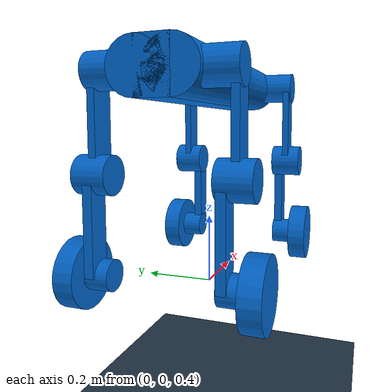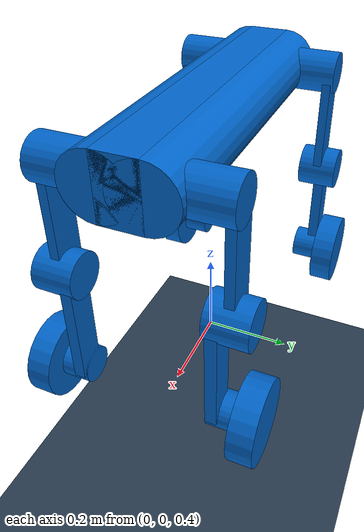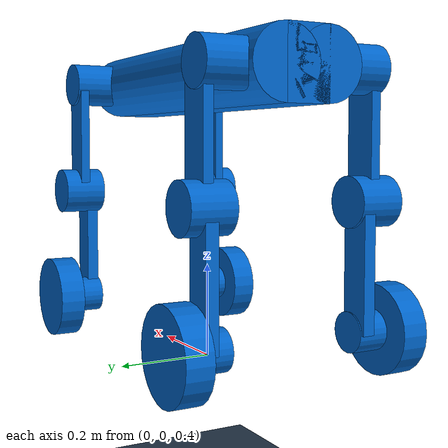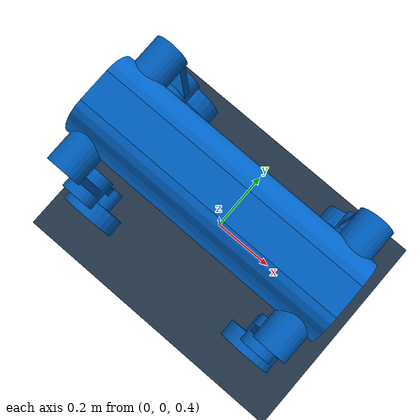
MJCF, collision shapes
<?xml version="1.0" encoding="UTF-8" ?>
<!-- 模型根节点：模型名 M20 -->
<mujoco model="M20">

    <!-- 默认类定义：视觉/碰撞几何与电机参数 -->
    <default>
        <!-- 机器人整体默认类 -->
        <default class="robot">
            <!-- 电机默认类：关节 + 执行器 -->
            <default class="motor">
                <joint/>
                <motor/>
            </default>
            <!-- 视觉默认类：不参与碰撞（contype=0），显示分组 2 -->
            <default class="visual">
                <geom material="default_material" contype="0" conaffinity="0" group="2"/>
            </default>
            <!-- 碰撞默认类：参与碰撞（contype=1），3 维接触、密度 0、显示分组 1 -->
            <default class="collision">
                <geom material="collision_material" condim="3" contype="1" conaffinity="1" solref="0.005 1"
                      friction="1 0.01 0.001" density="0" group="1"/>
            </default>
        </default>
    </default>

    <!-- 编译器选项：角度单位为弧度；mesh 目录为 ../meshes/ -->
    <compiler angle="radian" meshdir="../meshes/"/>
    <!-- 编译器选项：自动限位（autolimits） -->
    <compiler autolimits="true"/>

    <!-- 资源定义：材质 / 网格 / 纹理 -->
    <asset>
        <!-- 视觉几何默认材质（灰色） -->
        <material name="default_material" rgba="0.7 0.7 0.7 1"/>
        <!-- 碰撞几何材质（半透明蓝色） -->
        <material name="collision_material" rgba="0.0 0.4 0.8 0.2"/>
        <!-- 机身 mesh：base_link -->
        <mesh name="base_link" file="base_link.STL"/>
        <!-- 左前腿（fl）各部件 mesh -->
        <mesh name="fl_hipx" file="fl_hipx.STL"/>
        <mesh name="fl_hipy" file="fl_hipy.STL"/>
        <mesh name="fl_knee" file="fl_knee.STL"/>
        <mesh name="fl_wheel" file="fl_wheel.STL"/>
        <!-- 右前腿（fr）各部件 mesh -->
        <mesh name="fr_hipx" file="fr_hipx.STL"/>
        <mesh name="fr_hipy" file="fr_hipy.STL"/>
        <mesh name="fr_knee" file="fr_knee.STL"/>
        <mesh name="fr_wheel" file="fr_wheel.STL"/>
        <!-- 左后腿（hl）各部件 mesh -->
        <mesh name="hl_hipx" file="hl_hipx.STL"/>
        <mesh name="hl_hipy" file="hl_hipy.STL"/>
        <mesh name="hl_knee" file="hl_knee.STL"/>
        <mesh name="hl_wheel" file="hl_wheel.STL"/>
        <!-- 右后腿（hr）各部件 mesh -->
        <mesh name="hr_hipx" file="hr_hipx.STL"/>
        <mesh name="hr_hipy" file="hr_hipy.STL"/>
        <mesh name="hr_knee" file="hr_knee.STL"/>
        <mesh name="hr_wheel" file="hr_wheel.STL"/>
        <!-- 地面棋盘格纹理（512x512） -->
        <texture name="texplane" type="2d" builtin="checker" rgb1=".2 .3 .4" rgb2=".1 0.15 0.2"
                 width="512" height="512"/>
        <!-- 地面材质：棋盘格纹理，带反射 -->
        <material name='MatPlane' reflectance='0.3' texture="texplane" texrepeat="1 1" texuniform="true"/>
    </asset>

    <!-- 世界坐标系（场景根） -->
    <worldbody>
        <!-- 灯光 -->
        <!-- 方向光：从 (-0.5, 0.5, 3) 向下照射 -->
        <light directional="true" pos="-0.5 0.5 3" dir="0 0 -1"/>
        <!-- 地面：100x100 平面，棋盘格材质，参与碰撞 -->
        <geom name='floor' pos='0 0 0' size='100 100 .125' type='plane' material="MatPlane" condim='3'
              friction="1 0.01 0.01" group="0"/>

        <!-- 机身（base_link）：浮动基座，位于 (0, 0, 1) -->
        <body name="base_link" pos="0 0. 1." quat="1 0 0 0" childclass="robot">
            <!-- 浮动基座关节（自由 6DOF） -->
            <freejoint name="floating_base"/>
            <!-- 机身惯量：质量 15.882 kg -->
            <inertial pos="0.00355105878308153 0.0016507579200937 -0.00346462146571654"
                      quat="1 0 0 0"
                      mass="15.882" diaginertia="0.087919 0.533522 0.563492"/>

            <!-- IMU 安装位点（用于加速度计/陀螺仪） -->
            <site name="imu_site" pos="0.0632 -0.0268 0.0435" size="0.005" rgba="1 0 0 1"/>
            <!-- 机身基准位点（用于姿态/位姿传感器） -->
            <site name="base_site" pos="0 0 0" quat="1 0 0 0"/>

            <!-- 机身视觉网格 -->
            <geom type="mesh" mesh="base_link" class="visual"/>
            <!-- 机身碰撞几何：中央箱体 + 左右两个圆柱 -->
            <geom size="0.375 0.045 0.07" type="box" class="collision"/>
            <geom size="0.07 0.375" pos="0 0.045 0" quat="0.707107 0 0.707107 0" type="cylinder" class="collision"/>
            <geom size="0.07 0.375" pos="0 -0.045 0" quat="0.707107 0 0.707107 0" type="cylinder" class="collision"/>

            <!-- ============ 左前腿（fl）：hipx -> hipy -> knee -> wheel ============ -->
            <body name="fl_hipx" pos="0.3141 0.0685 0">
                <!-- fl_hipx 惯量（质量 0.260 kg） -->
                <inertial pos="-0.0111893 0.00891693 0.000405666" quat="0.581628 0.481707 0.465607 0.461387"
                          mass="0.259964"
                          diaginertia="0.000374402 0.000286289 0.000179309"/>
                <!-- fl_hipx 关节：绕 x 轴横滚，范围 [-0.436, 0.611] rad，力矩限制 [-76.4, 76.4] -->
                <joint name="fl_hipx_joint" pos="0 0 0" axis="-1 0 0" range="-0.436 0.611"
                       actuatorfrcrange="-76.4 76.4"/>
                <geom type="mesh" mesh="fl_hipx" class="visual"/>
                <geom size="0.048 0.07" pos="0 0.055 0" quat="0.707107 0.707107 0 0" type="cylinder" class="collision"/>
                <body name="fl_hipy">
                    <!-- fl_hipy 惯量（质量 2.618 kg） -->
                    <inertial pos="-0.00199375 0.098439 -0.130664" quat="0.6754 -0.0565887 0.0622156 0.73264"
                              mass="2.618"
                              diaginertia="0.0410181 0.0408067 0.00297328"/>
                    <!-- fl_hipy 关节：绕 y 轴俯仰，范围 [-2.286, 2.583] rad -->
                    <joint name="fl_hipy_joint" pos="0 0 0" axis="0 -1 0" range="-2.286 2.583"
                           actuatorfrcrange="-76.4 76.4"/>
                    <geom type="mesh" mesh="fl_hipy" class="visual"/>
                    <geom size="0.035 0.01 0.125" pos="-0.01 0.11 -0.125" type="box" class="collision"/>
                    <geom size="0.05 0.045" pos="0 0.11 -0.25" quat="0.707107 0.707107 0 0" type="cylinder"
                          class="collision"/>
                    <body name="fl_knee" pos="0 0.0984 -0.25">
                        <!-- fl_knee 惯量（质量 1.145 kg） -->
                        <inertial pos="0.00341917 0.00269124 -0.181265" quat="0.633405 -0.0508555 0.0475887 0.77068"
                                  mass="1.145" diaginertia="0.0121304 0.0117245 0.000948105"/>
                        <!-- fl_knee 关节：绕 y 轴俯仰 -->
                        <joint name="fl_knee_joint" pos="0 0 0" axis="0 -1 0" range="-2.809 2.792"
                               actuatorfrcrange="-76.4 76.4"/>
                        <geom type="mesh" mesh="fl_knee" class="visual"/>
                        <geom size="0.03 0.0125 0.125" pos="0.015 -0.015 -0.125" type="box" class="collision"/>
                        <geom size="0.04 0.05" pos="0 0.02 -0.25" quat="0.707107 0.707107 0 0" type="cylinder"
                              class="collision"/>
                        <body name="fl_wheel" pos="0 0.059676 -0.25">
                            <!-- fl_wheel 惯量（质量 0.638 kg） -->
                            <inertial pos="-3.11398e-07 0.000279002 5.70329e-07" quat="0.707107 0 0 0.707107"
                                      mass="0.638"
                                      diaginertia="0.002853 0.001535 0.001535"/>
                            <!-- fl_wheel 关节：绕 y 轴旋转（轮子驱动），力矩限制 [-21.6, 21.6] -->
                            <joint name="fl_wheel_joint" pos="0 0 0" axis="0 -1 0" actuatorfrcrange="-21.6 21.6"/>
                            <geom type="mesh" mesh="fl_wheel" class="visual"/>
                            <geom size="0.09 0.027" quat="0.707107 0.707107 0 0" type="cylinder" class="collision"/>
                        </body>
                    </body>
                </body>
            </body>
            <!-- ============ 右前腿（fr）：hipx -> hipy -> knee -> wheel ============ -->
            <body name="fr_hipx" pos="0.3141 -0.0685 0">
                <!-- fr_hipx 惯量（质量 0.260 kg） -->
                <inertial pos="-0.0110901 -0.00875035 0.000521421" quat="0.461387 0.465607 0.481707 0.581628"
                          mass="0.259964" diaginertia="0.000374402 0.000286289 0.000179309"/>
                <!-- fr_hipx 关节：绕 x 轴横滚，范围 [-0.611, 0.436] rad（与左前镜像） -->
                <joint name="fr_hipx_joint" pos="0 0 0" axis="-1 0 0" range="-0.611 0.436"
                       actuatorfrcrange="-76.4 76.4"/>
                <geom type="mesh" mesh="fr_hipx" class="visual"/>
                <geom size="0.048 0.07" pos="0 -0.055 0" quat="0.707107 0.707107 0 0" type="cylinder"
                      class="collision"/>
                <body name="fr_hipy">
                    <!-- fr_hipy 惯量（质量 2.618 kg） -->
                    <inertial pos="-0.00229992 -0.0989709 -0.130925" quat="0.6964 0.0586688 -0.0587886 0.712831"
                              mass="2.618" diaginertia="0.0407542 0.040538 0.00301281"/>
                    <!-- fr_hipy 关节：绕 y 轴俯仰 -->
                    <joint name="fr_hipy_joint" pos="0 0 0" axis="0 -1 0" range="-2.286 2.583"
                           actuatorfrcrange="-76.4 76.4"/>
                    <geom type="mesh" mesh="fr_hipy" class="visual"/>
                    <geom size="0.035 0.01 0.125" pos="-0.01 -0.11 -0.125" type="box" class="collision"/>
                    <geom size="0.05 0.045" pos="0 -0.11 -0.25" quat="0.707107 0.707107 0 0" type="cylinder"
                          class="collision"/>
                    <body name="fr_knee" pos="0 -0.0984 -0.25">
                        <!-- fr_knee 惯量（质量 1.145 kg） -->
                        <inertial pos="0.00354945 -0.00247884 -0.180089" quat="0.769194 0.0472982 -0.0504711 0.635261"
                                  mass="1.145" diaginertia="0.0122564 0.0118448 0.000951718"/>
                        <!-- fr_knee 关节：绕 y 轴俯仰 -->
                        <joint name="fr_knee_joint" pos="0 0 0" axis="0 -1 0" range="-2.809 2.792"
                               actuatorfrcrange="-76.4 76.4"/>
                        <geom type="mesh" mesh="fr_knee" class="visual"/>
                        <geom size="0.03 0.0125 0.125" pos="0.015 0.015 -0.125" type="box" class="collision"/>
                        <geom size="0.04 0.05" pos="0 -0.02 -0.25" quat="0.707107 0.707107 0 0" type="cylinder"
                              class="collision"/>
                        <body name="fr_wheel" pos="0 -0.059676 -0.25">
                            <!-- fr_wheel 惯量（质量 0.638 kg） -->
                            <inertial pos="-6.47327e-07 -0.000279012 -4.6242e-08" quat="0.707107 0 0 0.707107"
                                      mass="0.638"
                                      diaginertia="0.002853 0.001535 0.001535"/>
                            <!-- fr_wheel 关节：绕 y 轴旋转（轮子驱动） -->
                            <joint name="fr_wheel_joint" pos="0 0 0" axis="0 -1 0" actuatorfrcrange="-21.6 21.6"/>
                            <geom type="mesh" mesh="fr_wheel" class="visual"/>
                            <geom size="0.09 0.027" quat="0.707107 0.707107 0 0" type="cylinder" class="collision"/>
                        </body>
                    </body>
                </body>
            </body>
            <!-- ============ 左后腿（hl）：hipx -> hipy -> knee -> wheel ============ -->
            <body name="hl_hipx" pos="-0.3141 0.0685 0">
                <!-- hl_hipx 惯量（质量 0.260 kg） -->
                <inertial pos="0.0110901 0.00875014 0.000524884" quat="0.465607 0.461387 0.581628 0.481707"
                          mass="0.259964"
                          diaginertia="0.000374402 0.000286289 0.000179309"/>
                <!-- hl_hipx 关节：绕 x 轴横滚，范围 [-0.436, 0.611] rad -->
                <joint name="hl_hipx_joint" pos="0 0 0" axis="-1 0 0" range="-0.436 0.611"
                       actuatorfrcrange="-76.4 76.4"/>
                <geom type="mesh" mesh="hl_hipx" class="visual"/>
                <geom size="0.048 0.07" pos="0 0.055 0" quat="0.707107 0.707107 0 0" type="cylinder" class="collision"/>
                <body name="hl_hipy">
                    <!-- hl_hipy 惯量（质量 2.618 kg） -->
                    <inertial pos="0.00204343 0.0990227 -0.130697" quat="0.750359 -0.0628584 0.0546506 0.655761"
                              mass="2.618" diaginertia="0.0408376 0.0406211 0.00299727"/>
                    <!-- hl_hipy 关节：绕 y 轴俯仰，范围 [-2.583, 2.286] rad（与右前镜像） -->
                    <joint name="hl_hipy_joint" pos="0 0 0" axis="0 -1 0" range="-2.583 2.286"
                           actuatorfrcrange="-76.4 76.4"/>
                    <geom type="mesh" mesh="hl_hipy" class="visual"/>
                    <geom size="0.035 0.01 0.125" pos="0.01 0.11 -0.125" type="box" class="collision"/>
                    <geom size="0.05 0.045" pos="0 0.11 -0.25" quat="0.707107 0.707107 0 0" type="cylinder"
                          class="collision"/>
                    <body name="hl_knee" pos="0 0.0984 -0.25">
                        <!-- hl_knee 惯量（质量 1.145 kg） -->
                        <inertial pos="-0.00354945 0.00247885 -0.180089" quat="0.769194 -0.0472982 0.0504711 0.635261"
                                  mass="1.145" diaginertia="0.0122564 0.0118448 0.000951718"/>
                        <!-- hl_knee 关节：绕 y 轴俯仰，范围 [-2.792, 2.809] rad -->
                        <joint name="hl_knee_joint" pos="0 0 0" axis="0 -1 0" range="-2.792 2.809"
                               actuatorfrcrange="-76.4 76.4"/>
                        <geom type="mesh" mesh="hl_knee" class="visual"/>
                        <geom size="0.03 0.0125 0.125" pos="-0.015 0.015 -0.125" type="box" class="collision"/>
                        <geom size="0.04 0.05" pos="0 0.02 -0.25" quat="0.707107 0.707107 0 0" type="cylinder"
                              class="collision"/>
                        <body name="hl_wheel" pos="0 0.059676 -0.25">
                            <!-- hl_wheel 惯量（质量 0.638 kg） -->
                            <inertial pos="-6.07889e-07 0.000279009 2.1049e-07" quat="0.707107 0 0 0.707107"
                                      mass="0.638"
                                      diaginertia="0.002853 0.001535 0.001535"/>
                            <!-- hl_wheel 关节：绕 y 轴旋转（轮子驱动） -->
                            <joint name="hl_wheel_joint" pos="0 0 0" axis="0 -1 0" actuatorfrcrange="-21.6 21.6"/>
                            <geom type="mesh" mesh="hl_wheel" class="visual"/>
                            <geom size="0.09 0.027" quat="0.707107 0.707107 0 0" type="cylinder" class="collision"/>
                        </body>
                    </body>
                </body>
            </body>
            <!-- ============ 右后腿（hr）：hipx -> hipy -> knee -> wheel ============ -->
            <body name="hr_hipx" pos="-0.3141 -0.0685 0">
                <!-- hr_hipx 惯量（质量 0.260 kg） -->
                <inertial pos="0.0110902 -0.00875012 0.000524937" quat="0.481707 0.581628 0.461387 0.465607"
                          mass="0.259964"
                          diaginertia="0.000374402 0.000286289 0.000179309"/>
                <!-- hr_hipx 关节：绕 x 轴横滚，范围 [-0.611, 0.436] rad（与左后镜像） -->
                <joint name="hr_hipx_joint" pos="0 0 0" axis="-1 0 0" range="-0.611 0.436"
                       actuatorfrcrange="-76.4 76.4"/>
                <geom type="mesh" mesh="hr_hipx" class="visual"/>
                <geom size="0.048 0.07" pos="0 -0.055 0" quat="0.707107 0.707107 0 0" type="cylinder"
                      class="collision"/>
                <body name="hr_hipy">
                    <!-- hr_hipy 惯量（质量 2.618 kg） -->
                    <inertial pos="0.001992 -0.0983704 -0.130561" quat="0.676694 0.0567616 -0.0621797 0.731435"
                              mass="2.618"
                              diaginertia="0.0410109 0.0408028 0.00297526"/>
                    <!-- hr_hipy 关节：绕 y 轴俯仰，范围 [-2.583, 2.286] rad -->
                    <joint name="hr_hipy_joint" pos="0 0 0" axis="0 -1 0" range="-2.583 2.286"
                           actuatorfrcrange="-76.4 76.4"/>
                    <geom type="mesh" mesh="hr_hipy" class="visual"/>
                    <geom size="0.035 0.01 0.125" pos="0.01 -0.11 -0.125" type="box" class="collision"/>
                    <geom size="0.05 0.045" pos="0 -0.11 -0.25" quat="0.707107 0.707107 0 0" type="cylinder"
                          class="collision"/>
                    <body name="hr_knee" pos="0 -0.0984 -0.25">
                        <!-- hr_knee 惯量（质量 1.145 kg） -->
                        <inertial pos="-0.00341053 -0.00270202 -0.181287" quat="0.63448 0.050937 -0.0475303 0.769793"
                                  mass="1.145" diaginertia="0.0121352 0.0117289 0.000948904"/>
                        <!-- hr_knee 关节：绕 y 轴俯仰，范围 [-2.792, 2.809] rad -->
                        <joint name="hr_knee_joint" pos="0 0 0" axis="0 -1 0" range="-2.792 2.809"
                               actuatorfrcrange="-76.4 76.4"/>
                        <geom type="mesh" mesh="hr_knee" class="visual"/>
                        <geom size="0.03 0.0125 0.125" pos="-0.015 0.015 -0.125" type="box" class="collision"/>
                        <geom size="0.04 0.05" pos="0 -0.02 -0.25" quat="0.707107 0.707107 0 0" type="cylinder"
                              class="collision"/>
                        <body name="hr_wheel" pos="0 -0.059676 -0.25">
                            <!-- hr_wheel 惯量（质量 0.638 kg） -->
                            <inertial pos="6.09746e-07 -0.000279009 2.01314e-07" quat="0.707107 0 0 0.707107"
                                      mass="0.638"
                                      diaginertia="0.002853 0.001535 0.001535"/>
                            <!-- hr_wheel 关节：绕 y 轴旋转（轮子驱动） -->
                            <joint name="hr_wheel_joint" pos="0 0 0" axis="0 -1 0" actuatorfrcrange="-21.6 21.6"/>
                            <geom type="mesh" mesh="hr_wheel" class="visual"/>
                            <geom size="0.09 0.027" quat="0.707107 0.707107 0 0" type="cylinder" class="collision"/>
                        </body>
                    </body>
                </body>
            </body>
        </body>
    </worldbody>

    <!-- 执行器定义：16 个电机（每腿 hipx/hipy/knee 力矩 ±76.4，wheel ±21.6） -->
    <actuator>
        <!-- 左前腿电机 -->
        <motor name="fl_hipx_joint" joint="fl_hipx_joint" ctrllimited="true" ctrlrange="-76.4 76.4" gear="1"/>
        <motor name="fl_hipy_joint" joint="fl_hipy_joint" ctrllimited="true" ctrlrange="-76.4 76.4" gear="1"/>
        <motor name="fl_knee_joint" joint="fl_knee_joint" ctrllimited="true" ctrlrange="-76.4 76.4" gear="1"/>
        <motor name="fl_wheel_joint" joint="fl_wheel_joint" ctrllimited="true" ctrlrange="-21.6 21.6" gear="1"/>
        <!-- 右前腿电机 -->
        <motor name="fr_hipx_joint" joint="fr_hipx_joint" ctrllimited="true" ctrlrange="-76.4 76.4" gear="1"/>
        <motor name="fr_hipy_joint" joint="fr_hipy_joint" ctrllimited="true" ctrlrange="-76.4 76.4" gear="1"/>
        <motor name="fr_knee_joint" joint="fr_knee_joint" ctrllimited="true" ctrlrange="-76.4 76.4" gear="1"/>
        <motor name="fr_wheel_joint" joint="fr_wheel_joint" ctrllimited="true" ctrlrange="-21.6 21.6" gear="1"/>
        <!-- 左后腿电机 -->
        <motor name="hl_hipx_joint" joint="hl_hipx_joint" ctrllimited="true" ctrlrange="-76.4 76.4" gear="1"/>
        <motor name="hl_hipy_joint" joint="hl_hipy_joint" ctrllimited="true" ctrlrange="-76.4 76.4" gear="1"/>
        <motor name="hl_knee_joint" joint="hl_knee_joint" ctrllimited="true" ctrlrange="-76.4 76.4" gear="1"/>
        <motor name="hl_wheel_joint" joint="hl_wheel_joint" ctrllimited="true" ctrlrange="-21.6 21.6" gear="1"/>
        <!-- 右后腿电机 -->
        <motor name="hr_hipx_joint" joint="hr_hipx_joint" ctrllimited="true" ctrlrange="-76.4 76.4" gear="1"/>
        <motor name="hr_hipy_joint" joint="hr_hipy_joint" ctrllimited="true" ctrlrange="-76.4 76.4" gear="1"/>
        <motor name="hr_knee_joint" joint="hr_knee_joint" ctrllimited="true" ctrlrange="-76.4 76.4" gear="1"/>
        <motor name="hr_wheel_joint" joint="hr_wheel_joint" ctrllimited="true" ctrlrange="-21.6 21.6" gear="1"/>
    </actuator>

    <!-- 接触排除：相邻刚体间不产生接触（避免自身碰撞噪声） -->
    <contact>
        <!-- 左前腿链：base_link - fl_hipx - fl_hipy - fl_knee - fl_wheel -->
        <exclude body1="base_link" body2="fl_hipx"/>
        <exclude body1="fl_hipx" body2="fl_hipy"/>
        <exclude body1="fl_hipy" body2="fl_knee"/>
        <exclude body1="fl_knee" body2="fl_wheel"/>

        <!-- 右前腿链 -->
        <exclude body1="base_link" body2="fr_hipx"/>
        <exclude body1="fr_hipx" body2="fr_hipy"/>
        <exclude body1="fr_hipy" body2="fr_knee"/>
        <exclude body1="fr_knee" body2="fr_wheel"/>

        <!-- 左后腿链 -->
        <exclude body1="base_link" body2="hl_hipx"/>
        <exclude body1="hl_hipx" body2="hl_hipy"/>
        <exclude body1="hl_hipy" body2="hl_knee"/>
        <exclude body1="hl_knee" body2="hl_wheel"/>

        <!-- 右后腿链 -->
        <exclude body1="base_link" body2="hr_hipx"/>
        <exclude body1="hr_hipx" body2="hr_hipy"/>
        <exclude body1="hr_hipy" body2="hr_knee"/>
        <exclude body1="hr_knee" body2="hr_wheel"/>

    </contact>

    <!-- 传感器定义：机身姿态 + IMU（加速度计/陀螺仪） -->
    <sensor>
        <!-- 机身姿态四元数传感器（基准位点） -->
        <framequat name="base_quat" objtype="site" objname="base_site"/>
        <!-- IMU 加速度计（imu_site 处） -->
        <accelerometer site="imu_site"/>
        <!-- IMU 陀螺仪（imu_site 处） -->
        <gyro site="imu_site"/>

    </sensor>
</mujoco>
